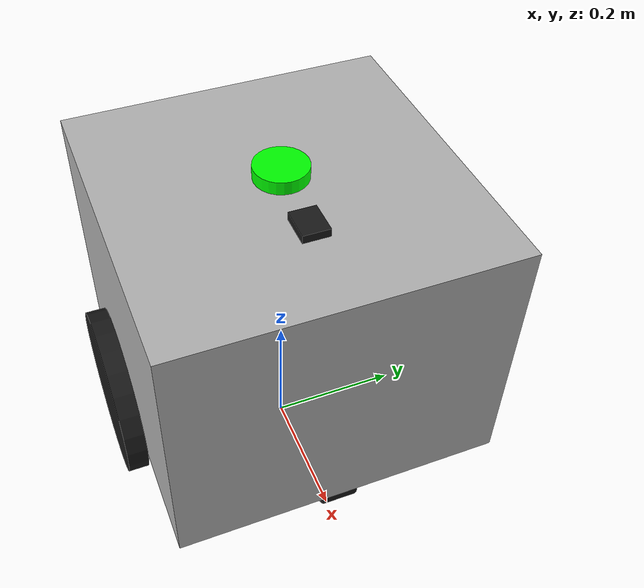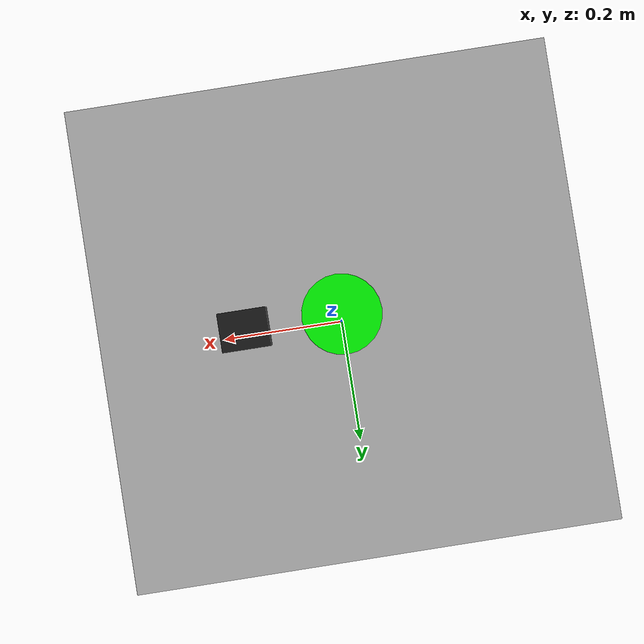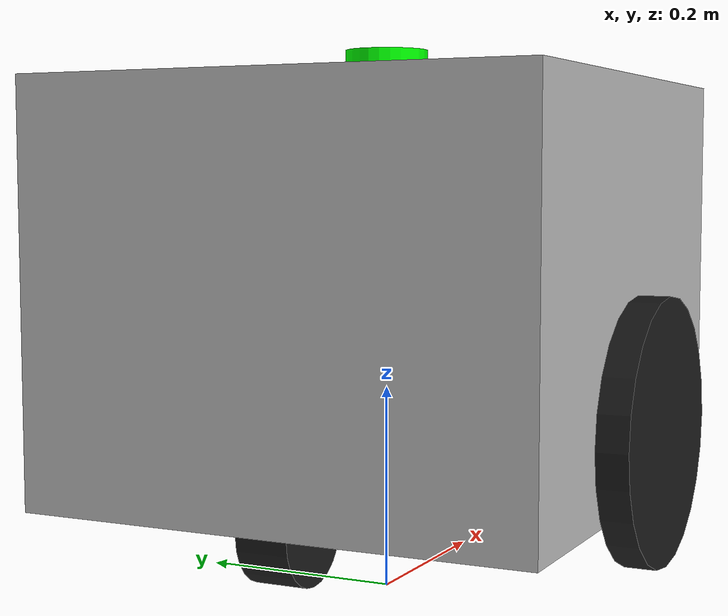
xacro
<?xml version='1.0' ?>
<robot name='shelfino' xmlns:xacro='http://www.ros.org/wiki/xacro'>

  <xacro:property name='PI_2' value='1.5707963267948966'/>
  <xacro:arg name="robot_id" default="X" />

  <!-- Define the macro for the whole shelfino -->
  <xacro:macro name="shelfino" params='robot_id'>

      <xacro:include filename='shelfino_v1/materials.xacro' />

      <xacro:include filename='shelfino_v1/shelfino_body.xacro' />
      <xacro:include filename='shelfino_v1/lidar.xacro' />
      <xacro:include filename='shelfino_v1/wheels.xacro' />

      <!-- Include RealSense T265 camera -->
      <xacro:include filename='shelfino_v1/realsense_t265.xacro' />

      <!-- Add RealSense T265 camera to the robot -->
      <xacro:realsense_t265 parent="shelfino${robot_id}/chassis_link"
                           xyz="0.1 0 0.5"
                           rpy="0 0 0"/>

      <xacro:include filename='shelfino_v1/gazebo_classic_controls.xacro' />

      <!--xacro:include filename='shelfino_v1/xmas_hat.xacro' /-->

  </xacro:macro>

  <!-- Instantiate the model -->
  <xacro:shelfino robot_id="$(arg robot_id)" />
</robot>

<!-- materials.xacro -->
<robot name='shelfino' xmlns:xacro='http://www.ros.org/wiki/xacro'>
  <!--
                  MATERIALS
  -->
  <material name='Black'>
    <color rgba='0.1 0.1 0.1 1.0'/>
  </material>

  <material name='Grey'>
    <color rgba='0.7 0.7 0.7 1.0'/>
  </material>

  <material name='White'>
    <color rgba='1.0 1.0 1.0 1.0'/>
  </material>

  <material name='Red'>
    <color rgba='1.0 0.0 0.0 1.0'/>
  </material>

  <material name='Green'>
    <color rgba='0.0 1.0 0.0 1.0'/>
  </material>

</robot>

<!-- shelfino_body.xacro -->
<robot name='shelfino' xmlns:xacro='http://www.ros.org/wiki/xacro'>

  <link name='shelfino${robot_id}/base_link'>
  <!-- This is the main link of reference for the body -->
  </link>

  <link name='shelfino${robot_id}/base_footprint'>
  <!-- This is the standard link to which the map is usually associated to -->
  </link>

  <!--
                  SHELFINO'S BODY
  -->
  <xacro:property name='body_width' value='0.5'/>
  <xacro:property name='body_length' value='0.5'/>
  <xacro:property name='body_height' value='0.4'/>
  <xacro:property name='body_offset_x' value='0'/>
  <xacro:property name='body_offset_y' value='0'/>
  <xacro:property name='body_offset_z' value='0.3'/>
  <xacro:property name='caster_radius' value='0.05'/>
  <xacro:property name='caster_width' value='0.05'/>
  <xacro:property name='caster_offset_z' value='0.1'/>
  <xacro:property name='body_weight' value='0.5'/>

  <link name='shelfino${robot_id}/chassis_link'>
    <visual name='body_visual'>
      <origin xyz='${body_offset_x} ${body_offset_y} ${body_offset_z}'/>
      <geometry>
        <box size='${body_width} ${body_length} ${body_height}'/>
      </geometry>
      <xacro:if value="${robot_id == 'evader'}">
        <material name='Red' />
      </xacro:if>
      <xacro:if value="${robot_id != 'evader'}">
        <material name='Grey' />
      </xacro:if>
    </visual>

    <visual name='front_caster_visual'>
      <origin xyz='-0.2 0 ${caster_offset_z}' rpy='0 ${PI_2} ${PI_2}'/>
      <geometry>
        <cylinder radius='${caster_radius}' length='${caster_width}'/>
      </geometry>
      <material name='Black' />
    </visual>

    <visual name='back_caster_visual'>
      <origin xyz='0.2 0 ${caster_offset_z}' rpy='0 ${PI_2} ${PI_2}'/>
      <geometry>
        <cylinder radius='${caster_radius}' length='${caster_width}'/>
      </geometry>
      <material name='Black' />
    </visual>

    <collision>
      <origin xyz='${body_offset_x} ${body_offset_y} ${body_offset_z}'/>
      <geometry>
        <box size='${body_width+caster_radius+0.02} ${body_length+0.02} ${body_height+caster_radius*2.0}' />
      </geometry>
    </collision>

    <inertial>
      <mass value='${body_weight}'/>
      <inertia ixx='0.001' ixy='0.0' ixz='0.0'
                iyy='0.001' iyz='0.0'
                izz='0.001' />
    </inertial>
  </link>

  <!--
                  JOINTS
  -->

  <joint name='shelfino${robot_id}/base_to_chassis_joint' type='fixed'>
    <parent link='shelfino${robot_id}/base_link'/>
    <child link='shelfino${robot_id}/chassis_link'/>
    <origin xyz='0 0 0' rpy='0 0 0'/>
  </joint>

  <joint name='shelfino${robot_id}/base_to_base_footprint_joint' type='fixed'>
    <parent link='shelfino${robot_id}/base_link'/>
    <child link='shelfino${robot_id}/base_footprint'/>
    <origin xyz='0 0 0' rpy='0 0 0'/>
  </joint>

  <!--
                  GAZEBO COLORS
  -->

  <gazebo reference="shelfino${robot_id}/chassis_link">
    <xacro:if value="${robot_id == 'evader'}">
      <material>Gazebo/Red</material>
    </xacro:if>
    <xacro:if value="${robot_id != 'evader'}">
      <material>Gazebo/Grey</material>
    </xacro:if>

    <mu1 value="0.000001"/>
    <mu2 value="0.000001"/>
  </gazebo>

</robot>

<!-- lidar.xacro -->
<robot name='shelfino' xmlns:xacro='http://www.ros.org/wiki/xacro'>
  <!--
                  LIDAR
  -->
  <xacro:property name='laser_radius' value='0.04'/>
  <xacro:property name='laser_height' value='0.02'/>
  <xacro:property name='laser_mass' value='0.1'/>

  <link name='shelfino${robot_id}/base_laser'>
    <visual>
      <origin xyz='0 0 ${laser_height/2}' rpy='0 0 0'/>
      <geometry>
        <cylinder radius='${laser_radius}' length='${laser_height}'/>
      </geometry>
      <material name='Green' />
    </visual>
    <inertial>
      <mass value='0.1'/>
      <inertia ixx='0.001' ixy='0.0' ixz='0.0'
                iyy='0.001' iyz='0.0'
                izz='0.001' />
    </inertial>
  </link>

  <!--
                  JOINT
  -->

  <joint name='lidar2d_joint' type='fixed'>
    <parent link='shelfino${robot_id}/chassis_link'/>
    <child link='shelfino${robot_id}/base_laser'/>
    <origin xyz='0 0 ${body_height+0.11}' rpy='0 0 0'/>
  </joint>

  <!-- LIDAR sensor using ray sensor type -->
  <gazebo reference='shelfino${robot_id}/base_laser'>
    <sensor name="hls_lfcd_lds" type="gpu_lidar">
      <always_on>true</always_on>
      <visualize>true</visualize>
      <pose>-0.064 0 0.121 0 0 0</pose>
      <update_rate>5</update_rate>
      <topic>shelfino${robot_id}/scan</topic>
      <gz_frame_id>shelfino${robot_id}/base_laser</gz_frame_id>
      <lidar>
        <scan>
          <horizontal>
            <samples>90</samples>
            <resolution>1.0</resolution>
            <min_angle>-2.356</min_angle>
            <max_angle>2.356</max_angle>
          </horizontal>
        </scan>
        <range>
          <min>0.1</min>
          <max>15.0</max>
          <resolution>0.01</resolution>
        </range>
        <noise>
          <type>gaussian</type>
          <mean>0.0</mean>
          <stddev>0.01</stddev>
        </noise>
      </lidar>
      <plugin name="laser_controller" filename="libgazebo_ros_ray_sensor.so">
        <ros>
          <remapping>~/out:=scan</remapping>
          <namespace>shelfino${robot_id}</namespace>
        </ros>
        <output_type>sensor_msgs/LaserScan</output_type>
        <frame_name>shelfino${robot_id}/base_laser</frame_name>
      </plugin>
    </sensor>
  </gazebo>
</robot>

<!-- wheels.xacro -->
<robot name='shelfino' xmlns:xacro='http://www.ros.org/wiki/xacro'>
  <xacro:property name='wheel_radius' value='0.125'/>
  <xacro:property name='wheel_width' value='0.03'/>

  <xacro:macro name="wheel" params="prefix reflect">

    <!--
                    LINKS
    -->

    <link name="shelfino${robot_id}/${prefix}_wheel">
      <visual>
        <geometry>
          <cylinder radius="${wheel_radius}" length="${wheel_width}"/>
        </geometry>
        <material name="Black"/>
      </visual>
      <collision>
        <geometry>
          <cylinder radius="${wheel_radius}" length="${wheel_width+0.005}"/>
        </geometry>
      </collision>
      <inertial>
        <mass value="0.028498940"/>
        <inertia ixx='1.1175580e-05' ixy='-4.2369783e-11' ixz='-5.9381719e-09'
            iyy='1.1192413e-05' iyz='-1.4400107e-11'
            izz='2.0712558e-05' />
      </inertial>
    </link>

    <!--
                    JOINTS
    -->

    <joint name="shelfino${robot_id}/${prefix}_wheel_joint" type="continuous">
      <parent link="shelfino${robot_id}/chassis_link"/>
      <child link="shelfino${robot_id}/${prefix}_wheel"/>
      <origin xyz="0 ${reflect*(body_width/2+0.02)} ${wheel_radius+0.05}" rpy="0 ${pi/2} ${pi/2}"/>
      <axis xyz="0 0 1"/> <!-- specifies the axis around which it should revolve -->
    </joint>

    <!--
                    GAZEBO COLORS
    -->
    <gazebo reference="shelfino${robot_id}/${prefix}_wheel">
      <material>Gazebo/Black</material>
      <plugin filename="gz-sim-joint-state-publisher-system" name="gz::sim::systems::JointStatePublisher">
        <topic>shelfino${robot_id}/joint_states</topic>
        <update_rate>100</update_rate>
        <joint_name>shelfino${robot_id}/${prefix}_wheel_joint</joint_name>
      </plugin>
    </gazebo>

  </xacro:macro>

  <!--
                    WHEELS
  -->
  <xacro:wheel prefix="right" reflect="-1" />
  <xacro:wheel prefix="left" reflect="1" />

</robot>

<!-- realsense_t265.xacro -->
<robot xmlns:xacro="http://www.ros.org/wiki/xacro">

  <xacro:macro name="realsense_t265" params="parent xyz:='0 0 0' rpy:='0 0 0'">

    <!-- Camera link -->
    <link name="${parent}_t265_link">
      <visual>
        <origin xyz="0 0 0" rpy="0 0 0"/>
        <geometry>
          <box size="0.05 0.04 0.025"/>
        </geometry>
        <material name="black">
          <color rgba="0.1 0.1 0.1 1.0"/>
        </material>
      </visual>
      <collision>
        <origin xyz="0 0 0" rpy="0 0 0"/>
        <geometry>
          <box size="0.05 0.04 0.025"/>
        </geometry>
      </collision>
      <inertial>
        <origin xyz="0 0 0" rpy="0 0 0"/>
        <mass value="0.055"/>  <!-- Approximate mass of T265 in kg -->
        <inertia ixx="1e-6" ixy="0" ixz="0"
                 iyy="1e-6" iyz="0"
                 izz="1e-6"/>
      </inertial>
    </link>

    <!-- Fixed joint to parent -->
    <joint name="${parent}_to_t265" type="fixed">
      <parent link="${parent}"/>
      <child link="${parent}_t265_link"/>
      <origin xyz="${xyz}" rpy="${rpy}"/>
    </joint>

    <!-- Pose frame for tracking -->
    <link name="${parent}_t265_pose_frame"/>
    <joint name="${parent}_t265_pose_joint" type="fixed">
      <parent link="${parent}_t265_link"/>
      <child link="${parent}_t265_pose_frame"/>
      <origin xyz="0 0 0" rpy="0 0 0"/>
    </joint>

  </xacro:macro>

</robot>
